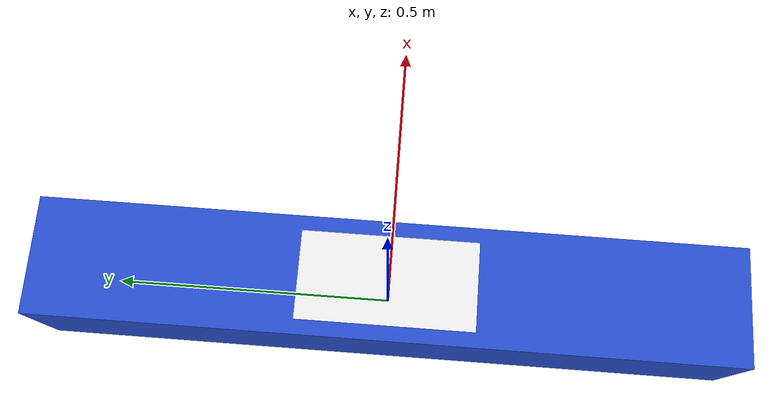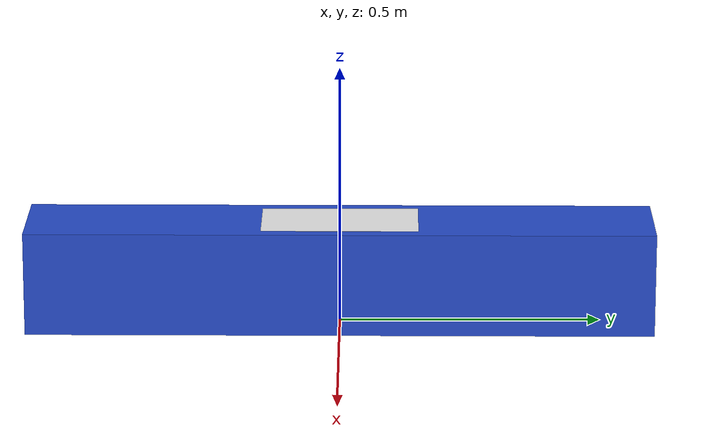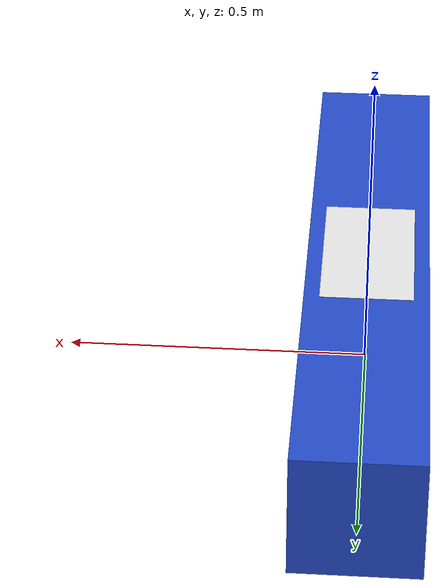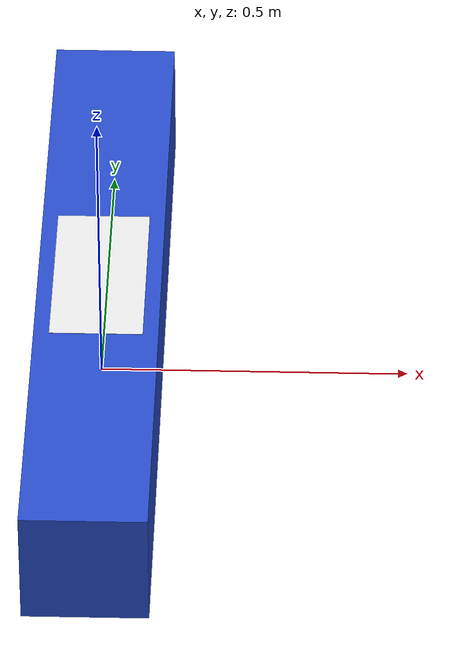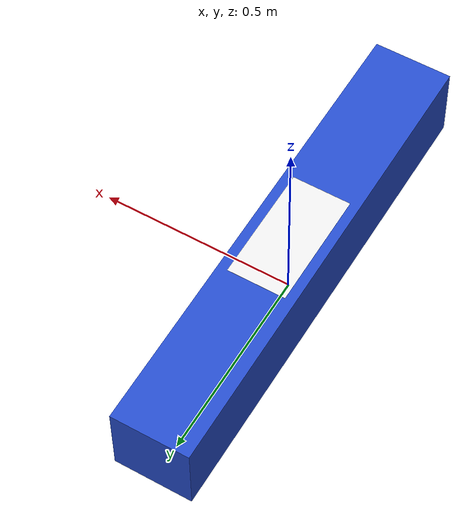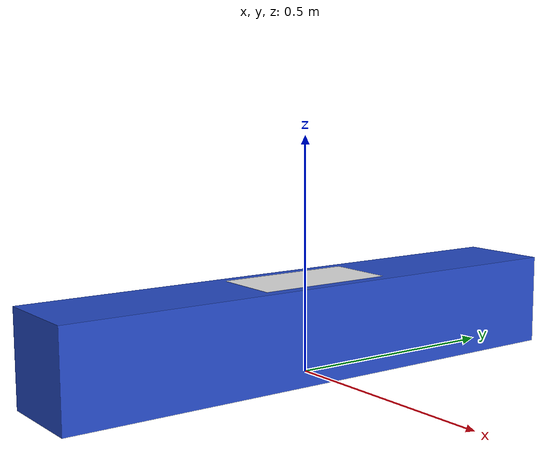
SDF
<?xml version='1.0'?>
<sdf version='1.6'>

<model name="single_blue_brick">
 	<link name="Blue_brick_link">
    <pose frame=''>0 0 0.1 0 -0 0</pose>

    <inertial>
		  <mass>0.015</mass>
      <inertia>
		    <ixx>0.00185</ixx>
        <ixy>0</ixy>
        <ixz>0</ixz>
        <iyy>0.0001</iyy>
        <iyz>0</iyz>
        <izz>0.00185</izz>
		  </inertia>
    </inertial>

    <visual name="visual">
		  <material>
			  <script>
				  <uri>gazebo.material</uri>
				  <name>Gazebo/Blue</name>
			  </script>
		  </material>
      <geometry>
        <box>
          <size>0.2 1.2 0.2</size>
        </box>
      </geometry>
    </visual>

    <visual name="visual FM plate">
      <pose>0 0 0.1 0 -0 0</pose>
		  <material>
			  <script>
				  <uri>gazebo.material</uri>
				  <name>Gazebo/White</name>
			  </script>
		  </material>
      <geometry>
        <box>
          <size>0.150 0.300 0.001</size>
        </box>
      </geometry>
    </visual>

    <collision name="collision">
      <geometry>
        <box>
          <size>0.2 1.2 0.2</size>
        </box>
      </geometry>
    </collision>
  </link>
</model>

</sdf>
